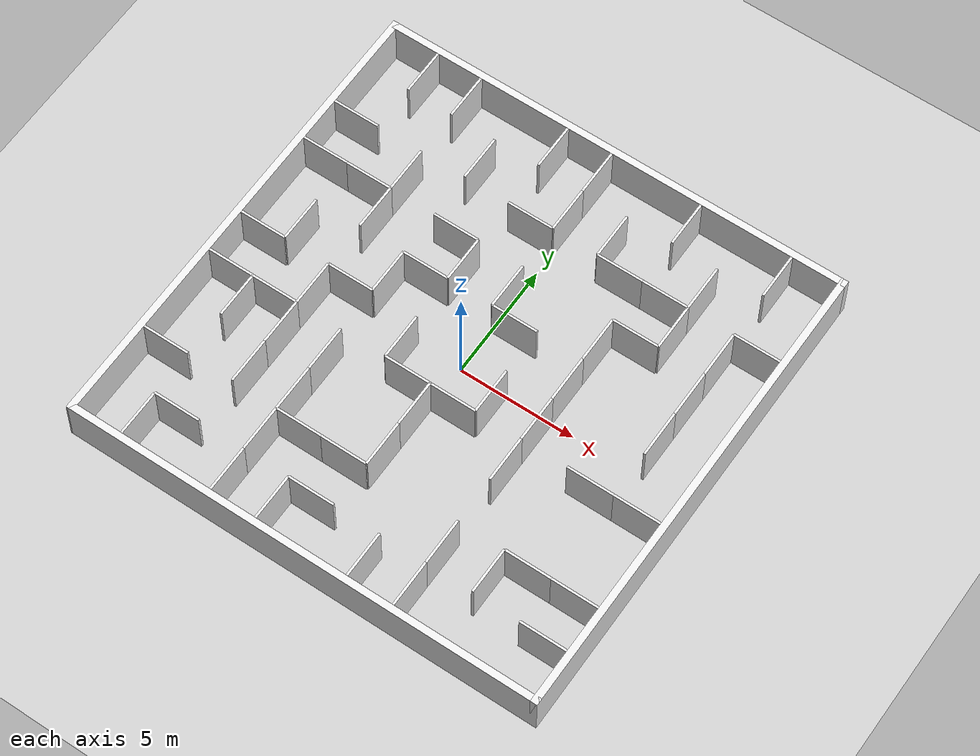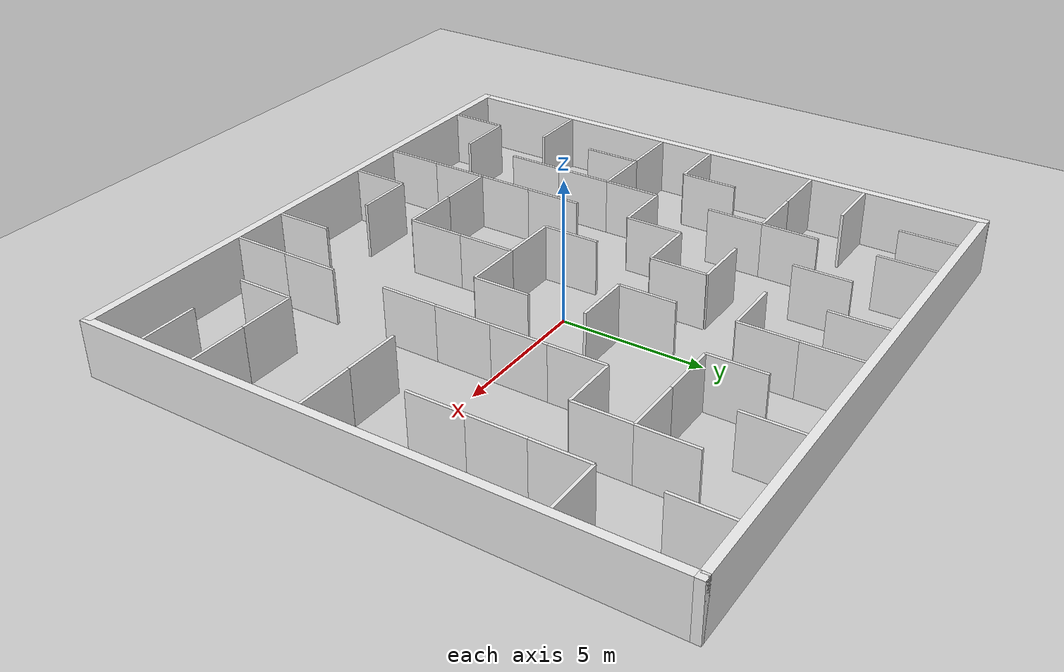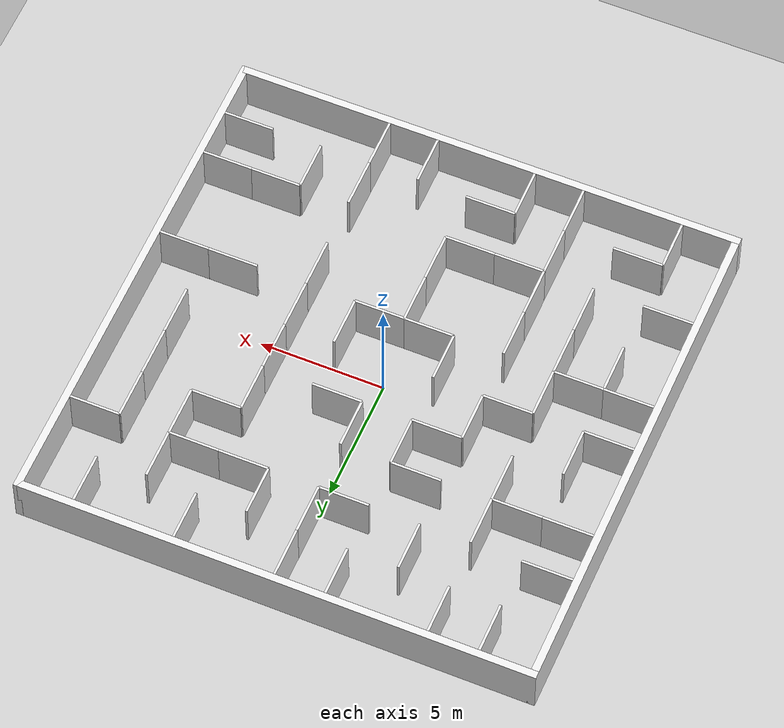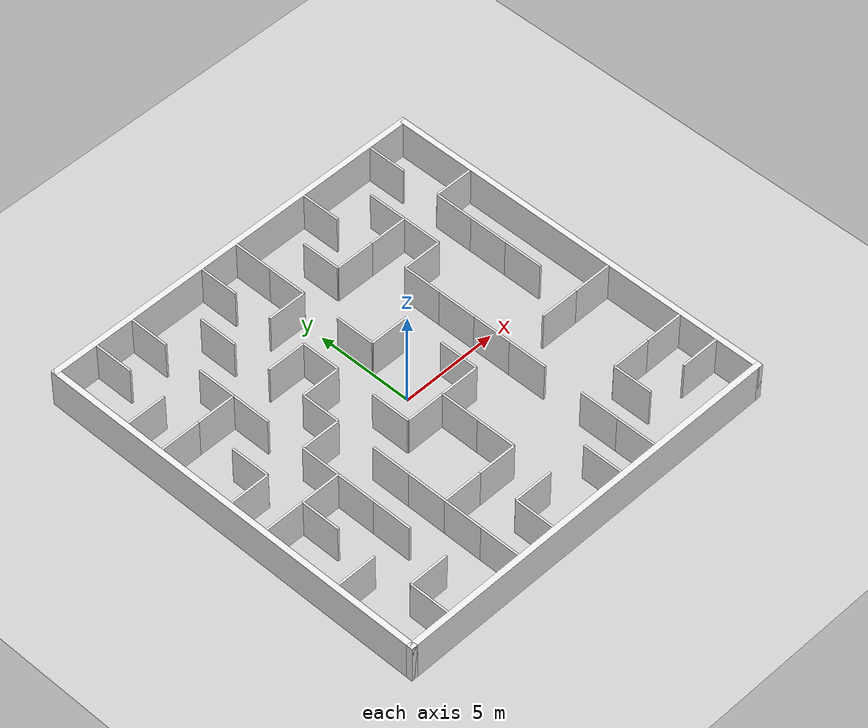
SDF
<sdf version="1.6">
 <world name="default">
  <light name="sun" type="directional">
   <pose>0 0 10 0 -0 0</pose>
   <diffuse>0.8 0.8 0.8 1</diffuse>
   <specular>0.2 0.2 0.2 1</specular>
   <attenuation>
    <range>1000</range>
    <constant>0.9</constant>
    <linear>0.01</linear>
    <quadratic>0.001</quadratic>
   </attenuation>
   <direction>-0.5 0.1 -0.9</direction>
  </light>
  <model name="ground_plane">
   <static>1</static>
   <link name="link">
    <collision name="collision">
     <geometry><plane><normal>0 0 1</normal><size>100 100</size></plane></geometry>
     <surface>
      <contact><collide_bitmask>65535</collide_bitmask></contact>
      <friction><ode><mu>100</mu><mu2>50</mu2></ode></friction>
     </surface>
    </collision>
    <visual name="visual">
     <cast_shadows>0</cast_shadows>
     <geometry><plane><normal>0 0 1</normal><size>100 100</size></plane></geometry>
     <material>
      <script><uri>file://media/materials/scripts/gazebo.material</uri><name>Gazebo/Grey</name></script>
     </material>
    </visual>
   </link>
  </model>
  <model name="simple_box1">
   <static>1</static>
   <pose>0 10.15 1 0 -0 0</pose>
   <link name="link">
    <inertial><mass>1</mass></inertial>
    <collision name="collision"><geometry><box><size>20.6 0.3 2</size></box></geometry></collision>
    <visual name="visual">
     <geometry><box><size>20.6 0.3 2</size></box></geometry>
     <material>
      <script><uri>file://media/materials/scripts/gazebo.material</uri><name>Gazebo/White</name></script>
     </material>
    </visual>
   </link>
  </model>
  <model name="simple_box2">
   <static>1</static>
   <pose>0 -10.15 1 0 -0 0</pose>
   <link name="link">
    <inertial><mass>1</mass></inertial>
    <collision name="collision"><geometry><box><size>20.6 0.3 2</size></box></geometry></collision>
    <visual name="visual">
     <geometry><box><size>20.6 0.3 2</size></box></geometry>
     <material>
      <script><uri>file://media/materials/scripts/gazebo.material</uri><name>Gazebo/White</name></script>
     </material>
    </visual>
   </link>
  </model>
  <model name="simple_box3">
   <static>1</static>
   <pose>10.15 0 1 0 -0 1.5708</pose>
   <link name="link">
    <inertial><mass>1</mass></inertial>
    <collision name="collision"><geometry><box><size>20.6 0.3 2</size></box></geometry></collision>
    <visual name="visual">
     <geometry><box><size>20.6 0.3 2</size></box></geometry>
     <material>
      <script><uri>file://media/materials/scripts/gazebo.material</uri><name>Gazebo/White</name></script>
     </material>
    </visual>
   </link>
  </model>
  <model name="simple_box4">
   <static>1</static>
   <pose>-10.15 0 1 0 -0 1.5708</pose>
   <link name="link">
    <inertial><mass>1</mass></inertial>
    <collision name="collision"><geometry><box><size>20.6 0.3 2</size></box></geometry></collision>
    <visual name="visual">
     <geometry><box><size>20.6 0.3 2</size></box></geometry>
     <material>
      <script><uri>file://media/materials/scripts/gazebo.material</uri><name>Gazebo/White</name></script>
     </material>
    </visual>
   </link>
  </model>
  <model name="wall0">
   <static>1</static>
   <pose>-8 -9 1 0 -0 1.5708</pose>
   <link name="link">
    <inertial><mass>1</mass></inertial>
    <collision name="collision"><geometry><box><size>2 0.1 2</size></box></geometry></collision>
    <visual name="visual">
     <geometry><box><size>2 0.1 2</size></box></geometry>
     <material>
      <script><uri>file://media/materials/scripts/gazebo.material</uri><name>Gazebo/White</name></script>
     </material>
    </visual>
   </link>
  </model>
  <model name="wall1">
   <static>1</static>
   <pose>-8 -3 1 0 -0 1.5708</pose>
   <link name="link">
    <inertial><mass>1</mass></inertial>
    <collision name="collision"><geometry><box><size>2 0.1 2</size></box></geometry></collision>
    <visual name="visual">
     <geometry><box><size>2 0.1 2</size></box></geometry>
     <material>
      <script><uri>file://media/materials/scripts/gazebo.material</uri><name>Gazebo/White</name></script>
     </material>
    </visual>
   </link>
  </model>
  <model name="wall3">
   <static>1</static>
   <pose>-8 1 1 0 -0 1.5708</pose>
   <link name="link">
    <inertial><mass>1</mass></inertial>
    <collision name="collision"><geometry><box><size>2 0.1 2</size></box></geometry></collision>
    <visual name="visual">
     <geometry><box><size>2 0.1 2</size></box></geometry>
     <material>
      <script><uri>file://media/materials/scripts/gazebo.material</uri><name>Gazebo/White</name></script>
     </material>
    </visual>
   </link>
  </model>
  <model name="wall5">
   <static>1</static>
   <pose>-8 9 1 0 -0 1.5708</pose>
   <link name="link">
    <inertial><mass>1</mass></inertial>
    <collision name="collision"><geometry><box><size>2 0.1 2</size></box></geometry></collision>
    <visual name="visual">
     <geometry><box><size>2 0.1 2</size></box></geometry>
     <material>
      <script><uri>file://media/materials/scripts/gazebo.material</uri><name>Gazebo/White</name></script>
     </material>
    </visual>
   </link>
  </model>
  <model name="wall6">
   <static>1</static>
   <pose>-6 -5 1 0 -0 1.5708</pose>
   <link name="link">
    <inertial><mass>1</mass></inertial>
    <collision name="collision"><geometry><box><size>2 0.1 2</size></box></geometry></collision>
    <visual name="visual">
     <geometry><box><size>2 0.1 2</size></box></geometry>
     <material>
      <script><uri>file://media/materials/scripts/gazebo.material</uri><name>Gazebo/White</name></script>
     </material>
    </visual>
   </link>
  </model>
  <model name="wall7">
   <static>1</static>
   <pose>-6 -3 1 0 -0 1.5708</pose>
   <link name="link">
    <inertial><mass>1</mass></inertial>
    <collision name="collision"><geometry><box><size>2 0.1 2</size></box></geometry></collision>
    <visual name="visual">
     <geometry><box><size>2 0.1 2</size></box></geometry>
     <material>
      <script><uri>file://media/materials/scripts/gazebo.material</uri><name>Gazebo/White</name></script>
     </material>
    </visual>
   </link>
  </model>
  <model name="wall8">
   <static>1</static>
   <pose>-6 -1 1 0 -0 1.5708</pose>
   <link name="link">
    <inertial><mass>1</mass></inertial>
    <collision name="collision"><geometry><box><size>2 0.1 2</size></box></geometry></collision>
    <visual name="visual">
     <geometry><box><size>2 0.1 2</size></box></geometry>
     <material>
      <script><uri>file://media/materials/scripts/gazebo.material</uri><name>Gazebo/White</name></script>
     </material>
    </visual>
   </link>
  </model>
  <model name="wall9">
   <static>1</static>
   <pose>-6 3 1 0 -0 1.5708</pose>
   <link name="link">
    <inertial><mass>1</mass></inertial>
    <collision name="collision"><geometry><box><size>2 0.1 2</size></box></geometry></collision>
    <visual name="visual">
     <geometry><box><size>2 0.1 2</size></box></geometry>
     <material>
      <script><uri>file://media/materials/scripts/gazebo.material</uri><name>Gazebo/White</name></script>
     </material>
    </visual>
   </link>
  </model>
  <model name="wall10">
   <static>1</static>
   <pose>-6 5 1 0 -0 1.5708</pose>
   <link name="link">
    <inertial><mass>1</mass></inertial>
    <collision name="collision"><geometry><box><size>2 0.1 2</size></box></geometry></collision>
    <visual name="visual">
     <geometry><box><size>2 0.1 2</size></box></geometry>
     <material>
      <script><uri>file://media/materials/scripts/gazebo.material</uri><name>Gazebo/White</name></script>
     </material>
    </visual>
   </link>
  </model>
  <model name="wall12">
   <static>1</static>
   <pose>-6 9 1 0 -0 1.5708</pose>
   <link name="link">
    <inertial><mass>1</mass></inertial>
    <collision name="collision"><geometry><box><size>2 0.1 2</size></box></geometry></collision>
    <visual name="visual">
     <geometry><box><size>2 0.1 2</size></box></geometry>
     <material>
      <script><uri>file://media/materials/scripts/gazebo.material</uri><name>Gazebo/White</name></script>
     </material>
    </visual>
   </link>
  </model>
  <model name="wall13">
   <static>1</static>
   <pose>-4 -9 1 0 -0 1.5708</pose>
   <link name="link">
    <inertial><mass>1</mass></inertial>
    <collision name="collision"><geometry><box><size>2 0.1 2</size></box></geometry></collision>
    <visual name="visual">
     <geometry><box><size>2 0.1 2</size></box></geometry>
     <material>
      <script><uri>file://media/materials/scripts/gazebo.material</uri><name>Gazebo/White</name></script>
     </material>
    </visual>
   </link>
  </model>
  <model name="wall14">
   <static>1</static>
   <pose>-4 -7 1 0 -0 1.5708</pose>
   <link name="link">
    <inertial><mass>1</mass></inertial>
    <collision name="collision"><geometry><box><size>2 0.1 2</size></box></geometry></collision>
    <visual name="visual">
     <geometry><box><size>2 0.1 2</size></box></geometry>
     <material>
      <script><uri>file://media/materials/scripts/gazebo.material</uri><name>Gazebo/White</name></script>
     </material>
    </visual>
   </link>
  </model>
  <model name="wall15">
   <static>1</static>
   <pose>-4 -5 1 0 -0 1.5708</pose>
   <link name="link">
    <inertial><mass>1</mass></inertial>
    <collision name="collision"><geometry><box><size>2 0.1 2</size></box></geometry></collision>
    <visual name="visual">
     <geometry><box><size>2 0.1 2</size></box></geometry>
     <material>
      <script><uri>file://media/materials/scripts/gazebo.material</uri><name>Gazebo/White</name></script>
     </material>
    </visual>
   </link>
  </model>
  <model name="wall16">
   <static>1</static>
   <pose>-4 -3 1 0 -0 1.5708</pose>
   <link name="link">
    <inertial><mass>1</mass></inertial>
    <collision name="collision"><geometry><box><size>2 0.1 2</size></box></geometry></collision>
    <visual name="visual">
     <geometry><box><size>2 0.1 2</size></box></geometry>
     <material>
      <script><uri>file://media/materials/scripts/gazebo.material</uri><name>Gazebo/White</name></script>
     </material>
    </visual>
   </link>
  </model>
  <model name="wall17">
   <static>1</static>
   <pose>-4 1 1 0 -0 1.5708</pose>
   <link name="link">
    <inertial><mass>1</mass></inertial>
    <collision name="collision"><geometry><box><size>2 0.1 2</size></box></geometry></collision>
    <visual name="visual">
     <geometry><box><size>2 0.1 2</size></box></geometry>
     <material>
      <script><uri>file://media/materials/scripts/gazebo.material</uri><name>Gazebo/White</name></script>
     </material>
    </visual>
   </link>
  </model>
  <model name="wall18">
   <static>1</static>
   <pose>-4 7 1 0 -0 1.5708</pose>
   <link name="link">
    <inertial><mass>1</mass></inertial>
    <collision name="collision"><geometry><box><size>2 0.1 2</size></box></geometry></collision>
    <visual name="visual">
     <geometry><box><size>2 0.1 2</size></box></geometry>
     <material>
      <script><uri>file://media/materials/scripts/gazebo.material</uri><name>Gazebo/White</name></script>
     </material>
    </visual>
   </link>
  </model>
  <model name="wall20">
   <static>1</static>
   <pose>-2 -9 1 0 -0 1.5708</pose>
   <link name="link">
    <inertial><mass>1</mass></inertial>
    <collision name="collision"><geometry><box><size>2 0.1 2</size></box></geometry></collision>
    <visual name="visual">
     <geometry><box><size>2 0.1 2</size></box></geometry>
     <material>
      <script><uri>file://media/materials/scripts/gazebo.material</uri><name>Gazebo/White</name></script>
     </material>
    </visual>
   </link>
  </model>
  <model name="wall22">
   <static>1</static>
   <pose>-2 -1 1 0 -0 1.5708</pose>
   <link name="link">
    <inertial><mass>1</mass></inertial>
    <collision name="collision"><geometry><box><size>2 0.1 2</size></box></geometry></collision>
    <visual name="visual">
     <geometry><box><size>2 0.1 2</size></box></geometry>
     <material>
      <script><uri>file://media/materials/scripts/gazebo.material</uri><name>Gazebo/White</name></script>
     </material>
    </visual>
   </link>
  </model>
  <model name="wall23">
   <static>1</static>
   <pose>-2 3 1 0 -0 1.5708</pose>
   <link name="link">
    <inertial><mass>1</mass></inertial>
    <collision name="collision"><geometry><box><size>2 0.1 2</size></box></geometry></collision>
    <visual name="visual">
     <geometry><box><size>2 0.1 2</size></box></geometry>
     <material>
      <script><uri>file://media/materials/scripts/gazebo.material</uri><name>Gazebo/White</name></script>
     </material>
    </visual>
   </link>
  </model>
  <model name="wall25">
   <static>1</static>
   <pose>-2 9 1 0 -0 1.5708</pose>
   <link name="link">
    <inertial><mass>1</mass></inertial>
    <collision name="collision"><geometry><box><size>2 0.1 2</size></box></geometry></collision>
    <visual name="visual">
     <geometry><box><size>2 0.1 2</size></box></geometry>
     <material>
      <script><uri>file://media/materials/scripts/gazebo.material</uri><name>Gazebo/White</name></script>
     </material>
    </visual>
   </link>
  </model>
  <model name="wall27">
   <static>1</static>
   <pose>0 -5 1 0 -0 1.5708</pose>
   <link name="link">
    <inertial><mass>1</mass></inertial>
    <collision name="collision"><geometry><box><size>2 0.1 2</size></box></geometry></collision>
    <visual name="visual">
     <geometry><box><size>2 0.1 2</size></box></geometry>
     <material>
      <script><uri>file://media/materials/scripts/gazebo.material</uri><name>Gazebo/White</name></script>
     </material>
    </visual>
   </link>
  </model>
  <model name="wall28">
   <static>1</static>
   <pose>0 -3 1 0 -0 1.5708</pose>
   <link name="link">
    <inertial><mass>1</mass></inertial>
    <collision name="collision"><geometry><box><size>2 0.1 2</size></box></geometry></collision>
    <visual name="visual">
     <geometry><box><size>2 0.1 2</size></box></geometry>
     <material>
      <script><uri>file://media/materials/scripts/gazebo.material</uri><name>Gazebo/White</name></script>
     </material>
    </visual>
   </link>
  </model>
  <model name="wall30">
   <static>1</static>
   <pose>0 3 1 0 -0 1.5708</pose>
   <link name="link">
    <inertial><mass>1</mass></inertial>
    <collision name="collision"><geometry><box><size>2 0.1 2</size></box></geometry></collision>
    <visual name="visual">
     <geometry><box><size>2 0.1 2</size></box></geometry>
     <material>
      <script><uri>file://media/materials/scripts/gazebo.material</uri><name>Gazebo/White</name></script>
     </material>
    </visual>
   </link>
  </model>
  <model name="wall31">
   <static>1</static>
   <pose>0 7 1 0 -0 1.5708</pose>
   <link name="link">
    <inertial><mass>1</mass></inertial>
    <collision name="collision"><geometry><box><size>2 0.1 2</size></box></geometry></collision>
    <visual name="visual">
     <geometry><box><size>2 0.1 2</size></box></geometry>
     <material>
      <script><uri>file://media/materials/scripts/gazebo.material</uri><name>Gazebo/White</name></script>
     </material>
    </visual>
   </link>
  </model>
  <model name="wall32">
   <static>1</static>
   <pose>0 9 1 0 -0 1.5708</pose>
   <link name="link">
    <inertial><mass>1</mass></inertial>
    <collision name="collision"><geometry><box><size>2 0.1 2</size></box></geometry></collision>
    <visual name="visual">
     <geometry><box><size>2 0.1 2</size></box></geometry>
     <material>
      <script><uri>file://media/materials/scripts/gazebo.material</uri><name>Gazebo/White</name></script>
     </material>
    </visual>
   </link>
  </model>
  <model name="wall33">
   <static>1</static>
   <pose>2 -9 1 0 -0 1.5708</pose>
   <link name="link">
    <inertial><mass>1</mass></inertial>
    <collision name="collision"><geometry><box><size>2 0.1 2</size></box></geometry></collision>
    <visual name="visual">
     <geometry><box><size>2 0.1 2</size></box></geometry>
     <material>
      <script><uri>file://media/materials/scripts/gazebo.material</uri><name>Gazebo/White</name></script>
     </material>
    </visual>
   </link>
  </model>
  <model name="wall34">
   <static>1</static>
   <pose>2 -1 1 0 -0 1.5708</pose>
   <link name="link">
    <inertial><mass>1</mass></inertial>
    <collision name="collision"><geometry><box><size>2 0.1 2</size></box></geometry></collision>
    <visual name="visual">
     <geometry><box><size>2 0.1 2</size></box></geometry>
     <material>
      <script><uri>file://media/materials/scripts/gazebo.material</uri><name>Gazebo/White</name></script>
     </material>
    </visual>
   </link>
  </model>
  <model name="wall35">
   <static>1</static>
   <pose>2 7 1 0 -0 1.5708</pose>
   <link name="link">
    <inertial><mass>1</mass></inertial>
    <collision name="collision"><geometry><box><size>2 0.1 2</size></box></geometry></collision>
    <visual name="visual">
     <geometry><box><size>2 0.1 2</size></box></geometry>
     <material>
      <script><uri>file://media/materials/scripts/gazebo.material</uri><name>Gazebo/White</name></script>
     </material>
    </visual>
   </link>
  </model>
  <model name="wall37">
   <static>1</static>
   <pose>4 -9 1 0 -0 1.5708</pose>
   <link name="link">
    <inertial><mass>1</mass></inertial>
    <collision name="collision"><geometry><box><size>2 0.1 2</size></box></geometry></collision>
    <visual name="visual">
     <geometry><box><size>2 0.1 2</size></box></geometry>
     <material>
      <script><uri>file://media/materials/scripts/gazebo.material</uri><name>Gazebo/White</name></script>
     </material>
    </visual>
   </link>
  </model>
  <model name="wall38">
   <static>1</static>
   <pose>4 -7 1 0 -0 1.5708</pose>
   <link name="link">
    <inertial><mass>1</mass></inertial>
    <collision name="collision"><geometry><box><size>2 0.1 2</size></box></geometry></collision>
    <visual name="visual">
     <geometry><box><size>2 0.1 2</size></box></geometry>
     <material>
      <script><uri>file://media/materials/scripts/gazebo.material</uri><name>Gazebo/White</name></script>
     </material>
    </visual>
   </link>
  </model>
  <model name="wall39">
   <static>1</static>
   <pose>4 -3 1 0 -0 1.5708</pose>
   <link name="link">
    <inertial><mass>1</mass></inertial>
    <collision name="collision"><geometry><box><size>2 0.1 2</size></box></geometry></collision>
    <visual name="visual">
     <geometry><box><size>2 0.1 2</size></box></geometry>
     <material>
      <script><uri>file://media/materials/scripts/gazebo.material</uri><name>Gazebo/White</name></script>
     </material>
    </visual>
   </link>
  </model>
  <model name="wall40">
   <static>1</static>
   <pose>4 -1 1 0 -0 1.5708</pose>
   <link name="link">
    <inertial><mass>1</mass></inertial>
    <collision name="collision"><geometry><box><size>2 0.1 2</size></box></geometry></collision>
    <visual name="visual">
     <geometry><box><size>2 0.1 2</size></box></geometry>
     <material>
      <script><uri>file://media/materials/scripts/gazebo.material</uri><name>Gazebo/White</name></script>
     </material>
    </visual>
   </link>
  </model>
  <model name="wall41">
   <static>1</static>
   <pose>4 1 1 0 -0 1.5708</pose>
   <link name="link">
    <inertial><mass>1</mass></inertial>
    <collision name="collision"><geometry><box><size>2 0.1 2</size></box></geometry></collision>
    <visual name="visual">
     <geometry><box><size>2 0.1 2</size></box></geometry>
     <material>
      <script><uri>file://media/materials/scripts/gazebo.material</uri><name>Gazebo/White</name></script>
     </material>
    </visual>
   </link>
  </model>
  <model name="wall42">
   <static>1</static>
   <pose>4 3 1 0 -0 1.5708</pose>
   <link name="link">
    <inertial><mass>1</mass></inertial>
    <collision name="collision"><geometry><box><size>2 0.1 2</size></box></geometry></collision>
    <visual name="visual">
     <geometry><box><size>2 0.1 2</size></box></geometry>
     <material>
      <script><uri>file://media/materials/scripts/gazebo.material</uri><name>Gazebo/White</name></script>
     </material>
    </visual>
   </link>
  </model>
  <model name="wall44">
   <static>1</static>
   <pose>4 9 1 0 -0 1.5708</pose>
   <link name="link">
    <inertial><mass>1</mass></inertial>
    <collision name="collision"><geometry><box><size>2 0.1 2</size></box></geometry></collision>
    <visual name="visual">
     <geometry><box><size>2 0.1 2</size></box></geometry>
     <material>
      <script><uri>file://media/materials/scripts/gazebo.material</uri><name>Gazebo/White</name></script>
     </material>
    </visual>
   </link>
  </model>
  <model name="wall46">
   <static>1</static>
   <pose>6 -7 1 0 -0 1.5708</pose>
   <link name="link">
    <inertial><mass>1</mass></inertial>
    <collision name="collision"><geometry><box><size>2 0.1 2</size></box></geometry></collision>
    <visual name="visual">
     <geometry><box><size>2 0.1 2</size></box></geometry>
     <material>
      <script><uri>file://media/materials/scripts/gazebo.material</uri><name>Gazebo/White</name></script>
     </material>
    </visual>
   </link>
  </model>
  <model name="wall47">
   <static>1</static>
   <pose>6 5 1 0 -0 1.5708</pose>
   <link name="link">
    <inertial><mass>1</mass></inertial>
    <collision name="collision"><geometry><box><size>2 0.1 2</size></box></geometry></collision>
    <visual name="visual">
     <geometry><box><size>2 0.1 2</size></box></geometry>
     <material>
      <script><uri>file://media/materials/scripts/gazebo.material</uri><name>Gazebo/White</name></script>
     </material>
    </visual>
   </link>
  </model>
  <model name="wall48">
   <static>1</static>
   <pose>6 7 1 0 -0 1.5708</pose>
   <link name="link">
    <inertial><mass>1</mass></inertial>
    <collision name="collision"><geometry><box><size>2 0.1 2</size></box></geometry></collision>
    <visual name="visual">
     <geometry><box><size>2 0.1 2</size></box></geometry>
     <material>
      <script><uri>file://media/materials/scripts/gazebo.material</uri><name>Gazebo/White</name></script>
     </material>
    </visual>
   </link>
  </model>
  <model name="wall50">
   <static>1</static>
   <pose>8 1 1 0 -0 1.5708</pose>
   <link name="link">
    <inertial><mass>1</mass></inertial>
    <collision name="collision"><geometry><box><size>2 0.1 2</size></box></geometry></collision>
    <visual name="visual">
     <geometry><box><size>2 0.1 2</size></box></geometry>
     <material>
      <script><uri>file://media/materials/scripts/gazebo.material</uri><name>Gazebo/White</name></script>
     </material>
    </visual>
   </link>
  </model>
  <model name="wall51">
   <static>1</static>
   <pose>8 3 1 0 -0 1.5708</pose>
   <link name="link">
    <inertial><mass>1</mass></inertial>
    <collision name="collision"><geometry><box><size>2 0.1 2</size></box></geometry></collision>
    <visual name="visual">
     <geometry><box><size>2 0.1 2</size></box></geometry>
     <material>
      <script><uri>file://media/materials/scripts/gazebo.material</uri><name>Gazebo/White</name></script>
     </material>
    </visual>
   </link>
  </model>
  <model name="wall52">
   <static>1</static>
   <pose>8 5 1 0 -0 1.5708</pose>
   <link name="link">
    <inertial><mass>1</mass></inertial>
    <collision name="collision"><geometry><box><size>2 0.1 2</size></box></geometry></collision>
    <visual name="visual">
     <geometry><box><size>2 0.1 2</size></box></geometry>
     <material>
      <script><uri>file://media/materials/scripts/gazebo.material</uri><name>Gazebo/White</name></script>
     </material>
    </visual>
   </link>
  </model>
  <model name="wall54">
   <static>1</static>
   <pose>8 9 1 0 -0 1.5708</pose>
   <link name="link">
    <inertial><mass>1</mass></inertial>
    <collision name="collision"><geometry><box><size>2 0.1 2</size></box></geometry></collision>
    <visual name="visual">
     <geometry><box><size>2 0.1 2</size></box></geometry>
     <material>
      <script><uri>file://media/materials/scripts/gazebo.material</uri><name>Gazebo/White</name></script>
     </material>
    </visual>
   </link>
  </model>
  <model name="wall55">
   <static>1</static>
   <pose>-9 -6 1 0 -0 0</pose>
   <link name="link">
    <inertial><mass>1</mass></inertial>
    <collision name="collision"><geometry><box><size>2 0.1 2</size></box></geometry></collision>
    <visual name="visual">
     <geometry><box><size>2 0.1 2</size></box></geometry>
     <material>
      <script><uri>file://media/materials/scripts/gazebo.material</uri><name>Gazebo/White</name></script>
     </material>
    </visual>
   </link>
  </model>
  <model name="wall56">
   <static>1</static>
   <pose>-9 -2 1 0 -0 0</pose>
   <link name="link">
    <inertial><mass>1</mass></inertial>
    <collision name="collision"><geometry><box><size>2 0.1 2</size></box></geometry></collision>
    <visual name="visual">
     <geometry><box><size>2 0.1 2</size></box></geometry>
     <material>
      <script><uri>file://media/materials/scripts/gazebo.material</uri><name>Gazebo/White</name></script>
     </material>
    </visual>
   </link>
  </model>
  <model name="wall57">
   <static>1</static>
   <pose>-9 0 1 0 -0 0</pose>
   <link name="link">
    <inertial><mass>1</mass></inertial>
    <collision name="collision"><geometry><box><size>2 0.1 2</size></box></geometry></collision>
    <visual name="visual">
     <geometry><box><size>2 0.1 2</size></box></geometry>
     <material>
      <script><uri>file://media/materials/scripts/gazebo.material</uri><name>Gazebo/White</name></script>
     </material>
    </visual>
   </link>
  </model>
  <model name="wall58">
   <static>1</static>
   <pose>-9 4 1 0 -0 0</pose>
   <link name="link">
    <inertial><mass>1</mass></inertial>
    <collision name="collision"><geometry><box><size>2 0.1 2</size></box></geometry></collision>
    <visual name="visual">
     <geometry><box><size>2 0.1 2</size></box></geometry>
     <material>
      <script><uri>file://media/materials/scripts/gazebo.material</uri><name>Gazebo/White</name></script>
     </material>
    </visual>
   </link>
  </model>
  <model name="wall59">
   <static>1</static>
   <pose>-9 6 1 0 -0 0</pose>
   <link name="link">
    <inertial><mass>1</mass></inertial>
    <collision name="collision"><geometry><box><size>2 0.1 2</size></box></geometry></collision>
    <visual name="visual">
     <geometry><box><size>2 0.1 2</size></box></geometry>
     <material>
      <script><uri>file://media/materials/scripts/gazebo.material</uri><name>Gazebo/White</name></script>
     </material>
    </visual>
   </link>
  </model>
  <model name="wall61">
   <static>1</static>
   <pose>-7 -8 1 0 -0 0</pose>
   <link name="link">
    <inertial><mass>1</mass></inertial>
    <collision name="collision"><geometry><box><size>2 0.1 2</size></box></geometry></collision>
    <visual name="visual">
     <geometry><box><size>2 0.1 2</size></box></geometry>
     <material>
      <script><uri>file://media/materials/scripts/gazebo.material</uri><name>Gazebo/White</name></script>
     </material>
    </visual>
   </link>
  </model>
  <model name="wall62">
   <static>1</static>
   <pose>-7 -2 1 0 -0 0</pose>
   <link name="link">
    <inertial><mass>1</mass></inertial>
    <collision name="collision"><geometry><box><size>2 0.1 2</size></box></geometry></collision>
    <visual name="visual">
     <geometry><box><size>2 0.1 2</size></box></geometry>
     <material>
      <script><uri>file://media/materials/scripts/gazebo.material</uri><name>Gazebo/White</name></script>
     </material>
    </visual>
   </link>
  </model>
  <model name="wall63">
   <static>1</static>
   <pose>-7 4 1 0 -0 0</pose>
   <link name="link">
    <inertial><mass>1</mass></inertial>
    <collision name="collision"><geometry><box><size>2 0.1 2</size></box></geometry></collision>
    <visual name="visual">
     <geometry><box><size>2 0.1 2</size></box></geometry>
     <material>
      <script><uri>file://media/materials/scripts/gazebo.material</uri><name>Gazebo/White</name></script>
     </material>
    </visual>
   </link>
  </model>
  <model name="wall66">
   <static>1</static>
   <pose>-5 0 1 0 -0 0</pose>
   <link name="link">
    <inertial><mass>1</mass></inertial>
    <collision name="collision"><geometry><box><size>2 0.1 2</size></box></geometry></collision>
    <visual name="visual">
     <geometry><box><size>2 0.1 2</size></box></geometry>
     <material>
      <script><uri>file://media/materials/scripts/gazebo.material</uri><name>Gazebo/White</name></script>
     </material>
    </visual>
   </link>
  </model>
  <model name="wall67">
   <static>1</static>
   <pose>-3 -6 1 0 -0 0</pose>
   <link name="link">
    <inertial><mass>1</mass></inertial>
    <collision name="collision"><geometry><box><size>2 0.1 2</size></box></geometry></collision>
    <visual name="visual">
     <geometry><box><size>2 0.1 2</size></box></geometry>
     <material>
      <script><uri>file://media/materials/scripts/gazebo.material</uri><name>Gazebo/White</name></script>
     </material>
    </visual>
   </link>
  </model>
  <model name="wall69">
   <static>1</static>
   <pose>-3 2 1 0 -0 0</pose>
   <link name="link">
    <inertial><mass>1</mass></inertial>
    <collision name="collision"><geometry><box><size>2 0.1 2</size></box></geometry></collision>
    <visual name="visual">
     <geometry><box><size>2 0.1 2</size></box></geometry>
     <material>
      <script><uri>file://media/materials/scripts/gazebo.material</uri><name>Gazebo/White</name></script>
     </material>
    </visual>
   </link>
  </model>
  <model name="wall70">
   <static>1</static>
   <pose>-3 4 1 0 -0 0</pose>
   <link name="link">
    <inertial><mass>1</mass></inertial>
    <collision name="collision"><geometry><box><size>2 0.1 2</size></box></geometry></collision>
    <visual name="visual">
     <geometry><box><size>2 0.1 2</size></box></geometry>
     <material>
      <script><uri>file://media/materials/scripts/gazebo.material</uri><name>Gazebo/White</name></script>
     </material>
    </visual>
   </link>
  </model>
  <model name="wall71">
   <static>1</static>
   <pose>-1 -8 1 0 -0 0</pose>
   <link name="link">
    <inertial><mass>1</mass></inertial>
    <collision name="collision"><geometry><box><size>2 0.1 2</size></box></geometry></collision>
    <visual name="visual">
     <geometry><box><size>2 0.1 2</size></box></geometry>
     <material>
      <script><uri>file://media/materials/scripts/gazebo.material</uri><name>Gazebo/White</name></script>
     </material>
    </visual>
   </link>
  </model>
  <model name="wall72">
   <static>1</static>
   <pose>-1 -6 1 0 -0 0</pose>
   <link name="link">
    <inertial><mass>1</mass></inertial>
    <collision name="collision"><geometry><box><size>2 0.1 2</size></box></geometry></collision>
    <visual name="visual">
     <geometry><box><size>2 0.1 2</size></box></geometry>
     <material>
      <script><uri>file://media/materials/scripts/gazebo.material</uri><name>Gazebo/White</name></script>
     </material>
    </visual>
   </link>
  </model>
  <model name="wall73">
   <static>1</static>
   <pose>-1 -2 1 0 -0 0</pose>
   <link name="link">
    <inertial><mass>1</mass></inertial>
    <collision name="collision"><geometry><box><size>2 0.1 2</size></box></geometry></collision>
    <visual name="visual">
     <geometry><box><size>2 0.1 2</size></box></geometry>
     <material>
      <script><uri>file://media/materials/scripts/gazebo.material</uri><name>Gazebo/White</name></script>
     </material>
    </visual>
   </link>
  </model>
  <model name="wall75">
   <static>1</static>
   <pose>-1 6 1 0 -0 0</pose>
   <link name="link">
    <inertial><mass>1</mass></inertial>
    <collision name="collision"><geometry><box><size>2 0.1 2</size></box></geometry></collision>
    <visual name="visual">
     <geometry><box><size>2 0.1 2</size></box></geometry>
     <material>
      <script><uri>file://media/materials/scripts/gazebo.material</uri><name>Gazebo/White</name></script>
     </material>
    </visual>
   </link>
  </model>
  <model name="wall77">
   <static>1</static>
   <pose>1 2 1 0 -0 0</pose>
   <link name="link">
    <inertial><mass>1</mass></inertial>
    <collision name="collision"><geometry><box><size>2 0.1 2</size></box></geometry></collision>
    <visual name="visual">
     <geometry><box><size>2 0.1 2</size></box></geometry>
     <material>
      <script><uri>file://media/materials/scripts/gazebo.material</uri><name>Gazebo/White</name></script>
     </material>
    </visual>
   </link>
  </model>
  <model name="wall78">
   <static>1</static>
   <pose>1 -2 1 0 -0 0</pose>
   <link name="link">
    <inertial><mass>1</mass></inertial>
    <collision name="collision"><geometry><box><size>2 0.1 2</size></box></geometry></collision>
    <visual name="visual">
     <geometry><box><size>2 0.1 2</size></box></geometry>
     <material>
      <script><uri>file://media/materials/scripts/gazebo.material</uri><name>Gazebo/White</name></script>
     </material>
    </visual>
   </link>
  </model>
  <model name="wall79">
   <static>1</static>
   <pose>3 6 1 0 -0 0</pose>
   <link name="link">
    <inertial><mass>1</mass></inertial>
    <collision name="collision"><geometry><box><size>2 0.1 2</size></box></geometry></collision>
    <visual name="visual">
     <geometry><box><size>2 0.1 2</size></box></geometry>
     <material>
      <script><uri>file://media/materials/scripts/gazebo.material</uri><name>Gazebo/White</name></script>
     </material>
    </visual>
   </link>
  </model>
  <model name="wall83">
   <static>1</static>
   <pose>5 4 1 0 -0 0</pose>
   <link name="link">
    <inertial><mass>1</mass></inertial>
    <collision name="collision"><geometry><box><size>2 0.1 2</size></box></geometry></collision>
    <visual name="visual">
     <geometry><box><size>2 0.1 2</size></box></geometry>
     <material>
      <script><uri>file://media/materials/scripts/gazebo.material</uri><name>Gazebo/White</name></script>
     </material>
    </visual>
   </link>
  </model>
  <model name="wall84">
   <static>1</static>
   <pose>5 6 1 0 -0 0</pose>
   <link name="link">
    <inertial><mass>1</mass></inertial>
    <collision name="collision"><geometry><box><size>2 0.1 2</size></box></geometry></collision>
    <visual name="visual">
     <geometry><box><size>2 0.1 2</size></box></geometry>
     <material>
      <script><uri>file://media/materials/scripts/gazebo.material</uri><name>Gazebo/White</name></script>
     </material>
    </visual>
   </link>
  </model>
  <model name="wall86">
   <static>1</static>
   <pose>7 -6 1 0 -0 0</pose>
   <link name="link">
    <inertial><mass>1</mass></inertial>
    <collision name="collision"><geometry><box><size>2 0.1 2</size></box></geometry></collision>
    <visual name="visual">
     <geometry><box><size>2 0.1 2</size></box></geometry>
     <material>
      <script><uri>file://media/materials/scripts/gazebo.material</uri><name>Gazebo/White</name></script>
     </material>
    </visual>
   </link>
  </model>
  <model name="wall87">
   <static>1</static>
   <pose>7 -2 1 0 -0 0</pose>
   <link name="link">
    <inertial><mass>1</mass></inertial>
    <collision name="collision"><geometry><box><size>2 0.1 2</size></box></geometry></collision>
    <visual name="visual">
     <geometry><box><size>2 0.1 2</size></box></geometry>
     <material>
      <script><uri>file://media/materials/scripts/gazebo.material</uri><name>Gazebo/White</name></script>
     </material>
    </visual>
   </link>
  </model>
  <model name="wall88">
   <static>1</static>
   <pose>9 -8 1 0 -0 0</pose>
   <link name="link">
    <inertial><mass>1</mass></inertial>
    <collision name="collision"><geometry><box><size>2 0.1 2</size></box></geometry></collision>
    <visual name="visual">
     <geometry><box><size>2 0.1 2</size></box></geometry>
     <material>
      <script><uri>file://media/materials/scripts/gazebo.material</uri><name>Gazebo/White</name></script>
     </material>
    </visual>
   </link>
  </model>
  <model name="wall89">
   <static>1</static>
   <pose>9 -6 1 0 -0 0</pose>
   <link name="link">
    <inertial><mass>1</mass></inertial>
    <collision name="collision"><geometry><box><size>2 0.1 2</size></box></geometry></collision>
    <visual name="visual">
     <geometry><box><size>2 0.1 2</size></box></geometry>
     <material>
      <script><uri>file://media/materials/scripts/gazebo.material</uri><name>Gazebo/White</name></script>
     </material>
    </visual>
   </link>
  </model>
  <model name="wall90">
   <static>1</static>
   <pose>9 -2 1 0 -0 0</pose>
   <link name="link">
    <inertial><mass>1</mass></inertial>
    <collision name="collision"><geometry><box><size>2 0.1 2</size></box></geometry></collision>
    <visual name="visual">
     <geometry><box><size>2 0.1 2</size></box></geometry>
     <material>
      <script><uri>file://media/materials/scripts/gazebo.material</uri><name>Gazebo/White</name></script>
     </material>
    </visual>
   </link>
  </model>
  <model name="wall91">
   <static>1</static>
   <pose>9 6 1 0 -0 0</pose>
   <link name="link">
    <inertial><mass>1</mass></inertial>
    <collision name="collision"><geometry><box><size>2 0.1 2</size></box></geometry></collision>
    <visual name="visual">
     <geometry><box><size>2 0.1 2</size></box></geometry>
     <material>
      <script><uri>file://media/materials/scripts/gazebo.material</uri><name>Gazebo/White</name></script>
     </material>
    </visual>
   </link>
  </model>
  <gravity>0 0 -9.8</gravity>
  <magnetic_field>6e-06 2.3e-05 -4.2e-05</magnetic_field>
  <atmosphere type="adiabatic"/>
  <physics name="default_physics" default="0" type="ode">
   <max_step_size>0.001</max_step_size>
   <real_time_factor>1</real_time_factor>
   <real_time_update_rate>1000</real_time_update_rate>
  </physics>
  <scene><ambient>0.4 0.4 0.4 1</ambient><background>0.7 0.7 0.7 1</background><shadows>1</shadows></scene>
  <audio><device>default</device></audio>
  <spherical_coordinates>
   <surface_model>EARTH_WGS84</surface_model>
   <latitude_deg>0</latitude_deg>
   <longitude_deg>0</longitude_deg>
   <elevation>0</elevation>
   <heading_deg>0</heading_deg>
  </spherical_coordinates>
 </world>
</sdf>
